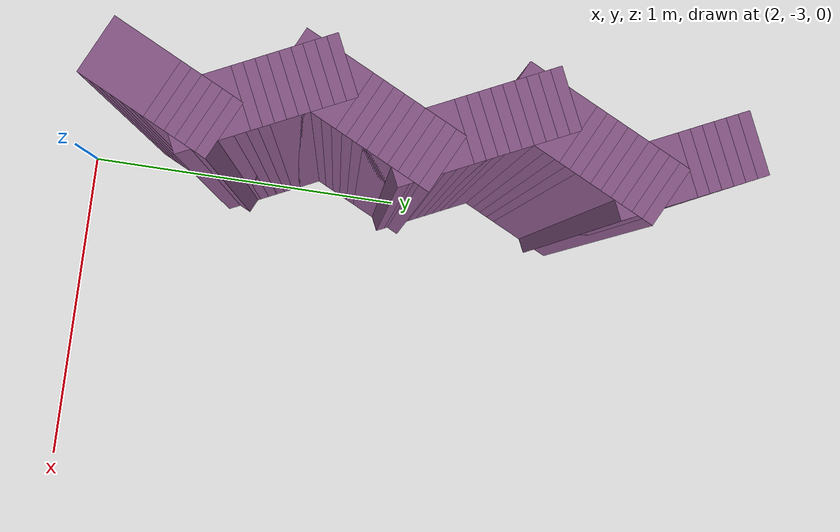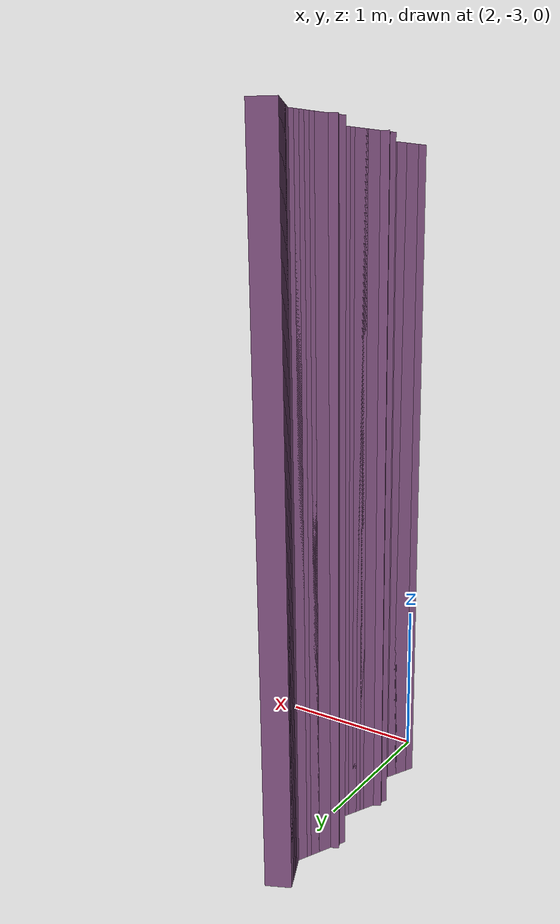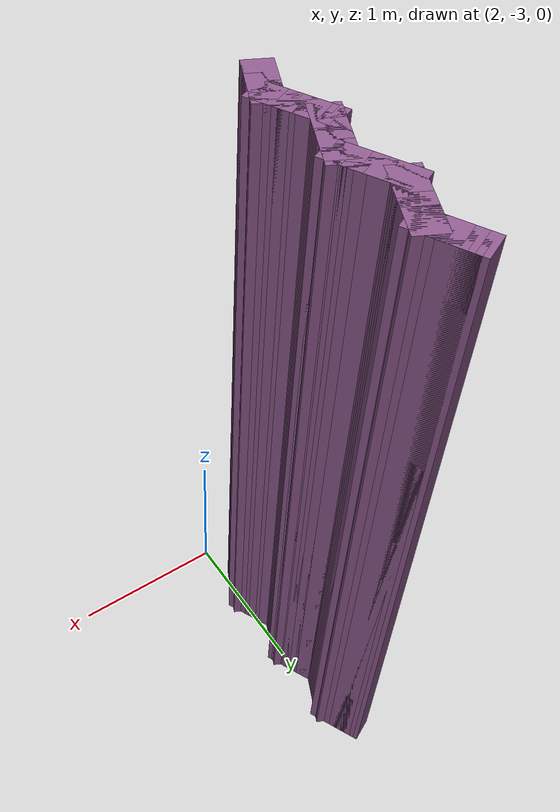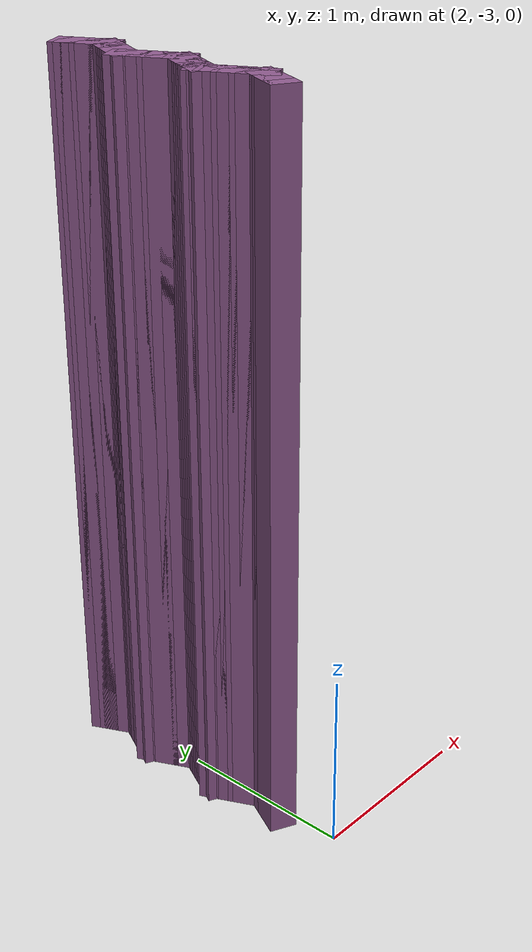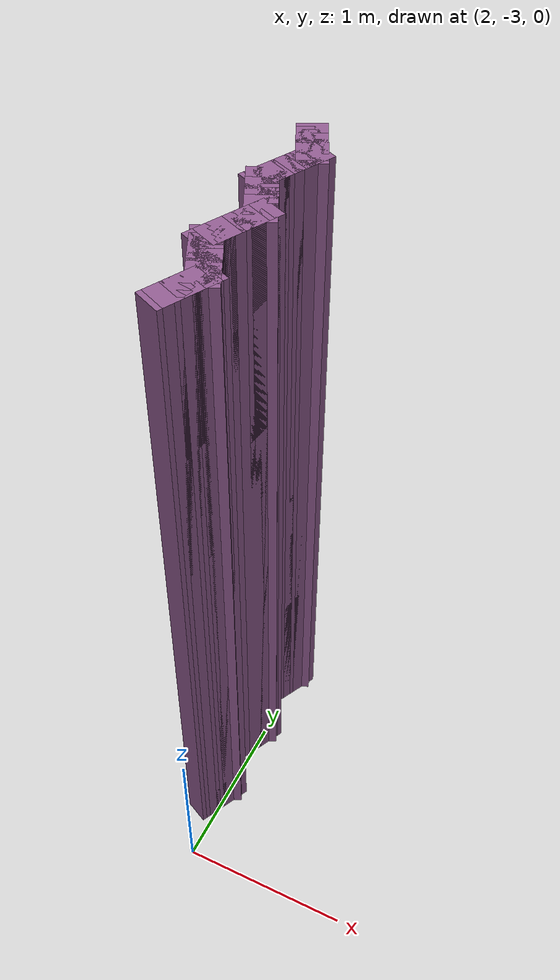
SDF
<sdf version="1.9">
 <world name="p5_serrated">
  <model name="wall_053">
   <static>true</static>
   <pose>1.9220 -2.6625 2.0000 0 0 1.12328</pose>
   <link name="link">
    <collision name="c"><geometry><box><size>0.1777 0.1500 4.0000</size></box></geometry></collision>
    <visual name="v">
     <geometry><box><size>0.1777 0.1500 4.0000</size></box></geometry>
     <material><ambient>0.55 0.35 0.55 1</ambient><diffuse>0.55 0.35 0.55 1</diffuse></material>
    </visual>
   </link>
  </model>
  <model name="wall_054">
   <static>true</static>
   <pose>1.9340 -2.6375 2.0000 0 0 1.12328</pose>
   <link name="link">
    <collision name="c"><geometry><box><size>0.1777 0.1500 4.0000</size></box></geometry></collision>
    <visual name="v">
     <geometry><box><size>0.1777 0.1500 4.0000</size></box></geometry>
     <material><ambient>0.55 0.35 0.55 1</ambient><diffuse>0.55 0.35 0.55 1</diffuse></material>
    </visual>
   </link>
  </model>
  <model name="wall_055">
   <static>true</static>
   <pose>1.9460 -2.6125 2.0000 0 0 1.12328</pose>
   <link name="link">
    <collision name="c"><geometry><box><size>0.1777 0.1500 4.0000</size></box></geometry></collision>
    <visual name="v">
     <geometry><box><size>0.1777 0.1500 4.0000</size></box></geometry>
     <material><ambient>0.55 0.35 0.55 1</ambient><diffuse>0.55 0.35 0.55 1</diffuse></material>
    </visual>
   </link>
  </model>
  <model name="wall_056">
   <static>true</static>
   <pose>1.9580 -2.5875 2.0000 0 0 1.12328</pose>
   <link name="link">
    <collision name="c"><geometry><box><size>0.1777 0.1500 4.0000</size></box></geometry></collision>
    <visual name="v">
     <geometry><box><size>0.1777 0.1500 4.0000</size></box></geometry>
     <material><ambient>0.55 0.35 0.55 1</ambient><diffuse>0.55 0.35 0.55 1</diffuse></material>
    </visual>
   </link>
  </model>
  <model name="wall_057">
   <static>true</static>
   <pose>1.9700 -2.5625 2.0000 0 0 1.12328</pose>
   <link name="link">
    <collision name="c"><geometry><box><size>0.1777 0.1500 4.0000</size></box></geometry></collision>
    <visual name="v">
     <geometry><box><size>0.1777 0.1500 4.0000</size></box></geometry>
     <material><ambient>0.55 0.35 0.55 1</ambient><diffuse>0.55 0.35 0.55 1</diffuse></material>
    </visual>
   </link>
  </model>
  <model name="wall_058">
   <static>true</static>
   <pose>1.9820 -2.5375 2.0000 0 0 1.12328</pose>
   <link name="link">
    <collision name="c"><geometry><box><size>0.1777 0.1500 4.0000</size></box></geometry></collision>
    <visual name="v">
     <geometry><box><size>0.1777 0.1500 4.0000</size></box></geometry>
     <material><ambient>0.55 0.35 0.55 1</ambient><diffuse>0.55 0.35 0.55 1</diffuse></material>
    </visual>
   </link>
  </model>
  <model name="wall_059">
   <static>true</static>
   <pose>1.9940 -2.5125 2.0000 0 0 1.12328</pose>
   <link name="link">
    <collision name="c"><geometry><box><size>0.1777 0.1500 4.0000</size></box></geometry></collision>
    <visual name="v">
     <geometry><box><size>0.1777 0.1500 4.0000</size></box></geometry>
     <material><ambient>0.55 0.35 0.55 1</ambient><diffuse>0.55 0.35 0.55 1</diffuse></material>
    </visual>
   </link>
  </model>
  <model name="wall_060">
   <static>true</static>
   <pose>1.9940 -2.4875 2.0000 0 0 2.01832</pose>
   <link name="link">
    <collision name="c"><geometry><box><size>0.1777 0.1500 4.0000</size></box></geometry></collision>
    <visual name="v">
     <geometry><box><size>0.1777 0.1500 4.0000</size></box></geometry>
     <material><ambient>0.55 0.35 0.55 1</ambient><diffuse>0.55 0.35 0.55 1</diffuse></material>
    </visual>
   </link>
  </model>
  <model name="wall_061">
   <static>true</static>
   <pose>1.9820 -2.4625 2.0000 0 0 2.01832</pose>
   <link name="link">
    <collision name="c"><geometry><box><size>0.1777 0.1500 4.0000</size></box></geometry></collision>
    <visual name="v">
     <geometry><box><size>0.1777 0.1500 4.0000</size></box></geometry>
     <material><ambient>0.55 0.35 0.55 1</ambient><diffuse>0.55 0.35 0.55 1</diffuse></material>
    </visual>
   </link>
  </model>
  <model name="wall_062">
   <static>true</static>
   <pose>1.9700 -2.4375 2.0000 0 0 2.01832</pose>
   <link name="link">
    <collision name="c"><geometry><box><size>0.1777 0.1500 4.0000</size></box></geometry></collision>
    <visual name="v">
     <geometry><box><size>0.1777 0.1500 4.0000</size></box></geometry>
     <material><ambient>0.55 0.35 0.55 1</ambient><diffuse>0.55 0.35 0.55 1</diffuse></material>
    </visual>
   </link>
  </model>
  <model name="wall_063">
   <static>true</static>
   <pose>1.9580 -2.4125 2.0000 0 0 2.01832</pose>
   <link name="link">
    <collision name="c"><geometry><box><size>0.1777 0.1500 4.0000</size></box></geometry></collision>
    <visual name="v">
     <geometry><box><size>0.1777 0.1500 4.0000</size></box></geometry>
     <material><ambient>0.55 0.35 0.55 1</ambient><diffuse>0.55 0.35 0.55 1</diffuse></material>
    </visual>
   </link>
  </model>
  <model name="wall_064">
   <static>true</static>
   <pose>1.9460 -2.3875 2.0000 0 0 2.01832</pose>
   <link name="link">
    <collision name="c"><geometry><box><size>0.1777 0.1500 4.0000</size></box></geometry></collision>
    <visual name="v">
     <geometry><box><size>0.1777 0.1500 4.0000</size></box></geometry>
     <material><ambient>0.55 0.35 0.55 1</ambient><diffuse>0.55 0.35 0.55 1</diffuse></material>
    </visual>
   </link>
  </model>
  <model name="wall_065">
   <static>true</static>
   <pose>1.9340 -2.3625 2.0000 0 0 2.01832</pose>
   <link name="link">
    <collision name="c"><geometry><box><size>0.1777 0.1500 4.0000</size></box></geometry></collision>
    <visual name="v">
     <geometry><box><size>0.1777 0.1500 4.0000</size></box></geometry>
     <material><ambient>0.55 0.35 0.55 1</ambient><diffuse>0.55 0.35 0.55 1</diffuse></material>
    </visual>
   </link>
  </model>
  <model name="wall_066">
   <static>true</static>
   <pose>1.9220 -2.3375 2.0000 0 0 2.01832</pose>
   <link name="link">
    <collision name="c"><geometry><box><size>0.1777 0.1500 4.0000</size></box></geometry></collision>
    <visual name="v">
     <geometry><box><size>0.1777 0.1500 4.0000</size></box></geometry>
     <material><ambient>0.55 0.35 0.55 1</ambient><diffuse>0.55 0.35 0.55 1</diffuse></material>
    </visual>
   </link>
  </model>
  <model name="wall_067">
   <static>true</static>
   <pose>1.9100 -2.3125 2.0000 0 0 2.01832</pose>
   <link name="link">
    <collision name="c"><geometry><box><size>0.1777 0.1500 4.0000</size></box></geometry></collision>
    <visual name="v">
     <geometry><box><size>0.1777 0.1500 4.0000</size></box></geometry>
     <material><ambient>0.55 0.35 0.55 1</ambient><diffuse>0.55 0.35 0.55 1</diffuse></material>
    </visual>
   </link>
  </model>
  <model name="wall_068">
   <static>true</static>
   <pose>1.8980 -2.2875 2.0000 0 0 2.01832</pose>
   <link name="link">
    <collision name="c"><geometry><box><size>0.1777 0.1500 4.0000</size></box></geometry></collision>
    <visual name="v">
     <geometry><box><size>0.1777 0.1500 4.0000</size></box></geometry>
     <material><ambient>0.55 0.35 0.55 1</ambient><diffuse>0.55 0.35 0.55 1</diffuse></material>
    </visual>
   </link>
  </model>
  <model name="wall_069">
   <static>true</static>
   <pose>1.8860 -2.2625 2.0000 0 0 2.01832</pose>
   <link name="link">
    <collision name="c"><geometry><box><size>0.1777 0.1500 4.0000</size></box></geometry></collision>
    <visual name="v">
     <geometry><box><size>0.1777 0.1500 4.0000</size></box></geometry>
     <material><ambient>0.55 0.35 0.55 1</ambient><diffuse>0.55 0.35 0.55 1</diffuse></material>
    </visual>
   </link>
  </model>
  <model name="wall_070">
   <static>true</static>
   <pose>1.8860 -2.2375 2.0000 0 0 1.12328</pose>
   <link name="link">
    <collision name="c"><geometry><box><size>0.1777 0.1500 4.0000</size></box></geometry></collision>
    <visual name="v">
     <geometry><box><size>0.1777 0.1500 4.0000</size></box></geometry>
     <material><ambient>0.55 0.35 0.55 1</ambient><diffuse>0.55 0.35 0.55 1</diffuse></material>
    </visual>
   </link>
  </model>
  <model name="wall_071">
   <static>true</static>
   <pose>1.8980 -2.2125 2.0000 0 0 1.12328</pose>
   <link name="link">
    <collision name="c"><geometry><box><size>0.1777 0.1500 4.0000</size></box></geometry></collision>
    <visual name="v">
     <geometry><box><size>0.1777 0.1500 4.0000</size></box></geometry>
     <material><ambient>0.55 0.35 0.55 1</ambient><diffuse>0.55 0.35 0.55 1</diffuse></material>
    </visual>
   </link>
  </model>
  <model name="wall_072">
   <static>true</static>
   <pose>1.9100 -2.1875 2.0000 0 0 1.12328</pose>
   <link name="link">
    <collision name="c"><geometry><box><size>0.1777 0.1500 4.0000</size></box></geometry></collision>
    <visual name="v">
     <geometry><box><size>0.1777 0.1500 4.0000</size></box></geometry>
     <material><ambient>0.55 0.35 0.55 1</ambient><diffuse>0.55 0.35 0.55 1</diffuse></material>
    </visual>
   </link>
  </model>
  <model name="wall_073">
   <static>true</static>
   <pose>1.9220 -2.1625 2.0000 0 0 1.12328</pose>
   <link name="link">
    <collision name="c"><geometry><box><size>0.1777 0.1500 4.0000</size></box></geometry></collision>
    <visual name="v">
     <geometry><box><size>0.1777 0.1500 4.0000</size></box></geometry>
     <material><ambient>0.55 0.35 0.55 1</ambient><diffuse>0.55 0.35 0.55 1</diffuse></material>
    </visual>
   </link>
  </model>
  <model name="wall_074">
   <static>true</static>
   <pose>1.9340 -2.1375 2.0000 0 0 1.12328</pose>
   <link name="link">
    <collision name="c"><geometry><box><size>0.1777 0.1500 4.0000</size></box></geometry></collision>
    <visual name="v">
     <geometry><box><size>0.1777 0.1500 4.0000</size></box></geometry>
     <material><ambient>0.55 0.35 0.55 1</ambient><diffuse>0.55 0.35 0.55 1</diffuse></material>
    </visual>
   </link>
  </model>
  <model name="wall_075">
   <static>true</static>
   <pose>1.9460 -2.1125 2.0000 0 0 1.12328</pose>
   <link name="link">
    <collision name="c"><geometry><box><size>0.1777 0.1500 4.0000</size></box></geometry></collision>
    <visual name="v">
     <geometry><box><size>0.1777 0.1500 4.0000</size></box></geometry>
     <material><ambient>0.55 0.35 0.55 1</ambient><diffuse>0.55 0.35 0.55 1</diffuse></material>
    </visual>
   </link>
  </model>
  <model name="wall_076">
   <static>true</static>
   <pose>1.9580 -2.0875 2.0000 0 0 1.12328</pose>
   <link name="link">
    <collision name="c"><geometry><box><size>0.1777 0.1500 4.0000</size></box></geometry></collision>
    <visual name="v">
     <geometry><box><size>0.1777 0.1500 4.0000</size></box></geometry>
     <material><ambient>0.55 0.35 0.55 1</ambient><diffuse>0.55 0.35 0.55 1</diffuse></material>
    </visual>
   </link>
  </model>
  <model name="wall_077">
   <static>true</static>
   <pose>1.9700 -2.0625 2.0000 0 0 1.12328</pose>
   <link name="link">
    <collision name="c"><geometry><box><size>0.1777 0.1500 4.0000</size></box></geometry></collision>
    <visual name="v">
     <geometry><box><size>0.1777 0.1500 4.0000</size></box></geometry>
     <material><ambient>0.55 0.35 0.55 1</ambient><diffuse>0.55 0.35 0.55 1</diffuse></material>
    </visual>
   </link>
  </model>
  <model name="wall_078">
   <static>true</static>
   <pose>1.9820 -2.0375 2.0000 0 0 1.12328</pose>
   <link name="link">
    <collision name="c"><geometry><box><size>0.1777 0.1500 4.0000</size></box></geometry></collision>
    <visual name="v">
     <geometry><box><size>0.1777 0.1500 4.0000</size></box></geometry>
     <material><ambient>0.55 0.35 0.55 1</ambient><diffuse>0.55 0.35 0.55 1</diffuse></material>
    </visual>
   </link>
  </model>
  <model name="wall_079">
   <static>true</static>
   <pose>1.9940 -2.0125 2.0000 0 0 1.12328</pose>
   <link name="link">
    <collision name="c"><geometry><box><size>0.1777 0.1500 4.0000</size></box></geometry></collision>
    <visual name="v">
     <geometry><box><size>0.1777 0.1500 4.0000</size></box></geometry>
     <material><ambient>0.55 0.35 0.55 1</ambient><diffuse>0.55 0.35 0.55 1</diffuse></material>
    </visual>
   </link>
  </model>
  <model name="wall_080">
   <static>true</static>
   <pose>1.9940 -1.9875 2.0000 0 0 2.01832</pose>
   <link name="link">
    <collision name="c"><geometry><box><size>0.1777 0.1500 4.0000</size></box></geometry></collision>
    <visual name="v">
     <geometry><box><size>0.1777 0.1500 4.0000</size></box></geometry>
     <material><ambient>0.55 0.35 0.55 1</ambient><diffuse>0.55 0.35 0.55 1</diffuse></material>
    </visual>
   </link>
  </model>
  <model name="wall_081">
   <static>true</static>
   <pose>1.9820 -1.9625 2.0000 0 0 2.01832</pose>
   <link name="link">
    <collision name="c"><geometry><box><size>0.1777 0.1500 4.0000</size></box></geometry></collision>
    <visual name="v">
     <geometry><box><size>0.1777 0.1500 4.0000</size></box></geometry>
     <material><ambient>0.55 0.35 0.55 1</ambient><diffuse>0.55 0.35 0.55 1</diffuse></material>
    </visual>
   </link>
  </model>
  <model name="wall_082">
   <static>true</static>
   <pose>1.9700 -1.9375 2.0000 0 0 2.01832</pose>
   <link name="link">
    <collision name="c"><geometry><box><size>0.1777 0.1500 4.0000</size></box></geometry></collision>
    <visual name="v">
     <geometry><box><size>0.1777 0.1500 4.0000</size></box></geometry>
     <material><ambient>0.55 0.35 0.55 1</ambient><diffuse>0.55 0.35 0.55 1</diffuse></material>
    </visual>
   </link>
  </model>
  <model name="wall_083">
   <static>true</static>
   <pose>1.9580 -1.9125 2.0000 0 0 2.01832</pose>
   <link name="link">
    <collision name="c"><geometry><box><size>0.1777 0.1500 4.0000</size></box></geometry></collision>
    <visual name="v">
     <geometry><box><size>0.1777 0.1500 4.0000</size></box></geometry>
     <material><ambient>0.55 0.35 0.55 1</ambient><diffuse>0.55 0.35 0.55 1</diffuse></material>
    </visual>
   </link>
  </model>
  <model name="wall_084">
   <static>true</static>
   <pose>1.9460 -1.8875 2.0000 0 0 2.01832</pose>
   <link name="link">
    <collision name="c"><geometry><box><size>0.1777 0.1500 4.0000</size></box></geometry></collision>
    <visual name="v">
     <geometry><box><size>0.1777 0.1500 4.0000</size></box></geometry>
     <material><ambient>0.55 0.35 0.55 1</ambient><diffuse>0.55 0.35 0.55 1</diffuse></material>
    </visual>
   </link>
  </model>
  <model name="wall_085">
   <static>true</static>
   <pose>1.9340 -1.8625 2.0000 0 0 2.01832</pose>
   <link name="link">
    <collision name="c"><geometry><box><size>0.1777 0.1500 4.0000</size></box></geometry></collision>
    <visual name="v">
     <geometry><box><size>0.1777 0.1500 4.0000</size></box></geometry>
     <material><ambient>0.55 0.35 0.55 1</ambient><diffuse>0.55 0.35 0.55 1</diffuse></material>
    </visual>
   </link>
  </model>
  <model name="wall_086">
   <static>true</static>
   <pose>1.9220 -1.8375 2.0000 0 0 2.01832</pose>
   <link name="link">
    <collision name="c"><geometry><box><size>0.1777 0.1500 4.0000</size></box></geometry></collision>
    <visual name="v">
     <geometry><box><size>0.1777 0.1500 4.0000</size></box></geometry>
     <material><ambient>0.55 0.35 0.55 1</ambient><diffuse>0.55 0.35 0.55 1</diffuse></material>
    </visual>
   </link>
  </model>
  <model name="wall_087">
   <static>true</static>
   <pose>1.9100 -1.8125 2.0000 0 0 2.01832</pose>
   <link name="link">
    <collision name="c"><geometry><box><size>0.1777 0.1500 4.0000</size></box></geometry></collision>
    <visual name="v">
     <geometry><box><size>0.1777 0.1500 4.0000</size></box></geometry>
     <material><ambient>0.55 0.35 0.55 1</ambient><diffuse>0.55 0.35 0.55 1</diffuse></material>
    </visual>
   </link>
  </model>
  <model name="wall_088">
   <static>true</static>
   <pose>1.8980 -1.7875 2.0000 0 0 2.01832</pose>
   <link name="link">
    <collision name="c"><geometry><box><size>0.1777 0.1500 4.0000</size></box></geometry></collision>
    <visual name="v">
     <geometry><box><size>0.1777 0.1500 4.0000</size></box></geometry>
     <material><ambient>0.55 0.35 0.55 1</ambient><diffuse>0.55 0.35 0.55 1</diffuse></material>
    </visual>
   </link>
  </model>
  <model name="wall_089">
   <static>true</static>
   <pose>1.8860 -1.7625 2.0000 0 0 2.01832</pose>
   <link name="link">
    <collision name="c"><geometry><box><size>0.1777 0.1500 4.0000</size></box></geometry></collision>
    <visual name="v">
     <geometry><box><size>0.1777 0.1500 4.0000</size></box></geometry>
     <material><ambient>0.55 0.35 0.55 1</ambient><diffuse>0.55 0.35 0.55 1</diffuse></material>
    </visual>
   </link>
  </model>
  <model name="wall_090">
   <static>true</static>
   <pose>1.8860 -1.7375 2.0000 0 0 1.12328</pose>
   <link name="link">
    <collision name="c"><geometry><box><size>0.1777 0.1500 4.0000</size></box></geometry></collision>
    <visual name="v">
     <geometry><box><size>0.1777 0.1500 4.0000</size></box></geometry>
     <material><ambient>0.55 0.35 0.55 1</ambient><diffuse>0.55 0.35 0.55 1</diffuse></material>
    </visual>
   </link>
  </model>
  <model name="wall_091">
   <static>true</static>
   <pose>1.8980 -1.7125 2.0000 0 0 1.12328</pose>
   <link name="link">
    <collision name="c"><geometry><box><size>0.1777 0.1500 4.0000</size></box></geometry></collision>
    <visual name="v">
     <geometry><box><size>0.1777 0.1500 4.0000</size></box></geometry>
     <material><ambient>0.55 0.35 0.55 1</ambient><diffuse>0.55 0.35 0.55 1</diffuse></material>
    </visual>
   </link>
  </model>
  <model name="wall_092">
   <static>true</static>
   <pose>1.9100 -1.6875 2.0000 0 0 1.12328</pose>
   <link name="link">
    <collision name="c"><geometry><box><size>0.1777 0.1500 4.0000</size></box></geometry></collision>
    <visual name="v">
     <geometry><box><size>0.1777 0.1500 4.0000</size></box></geometry>
     <material><ambient>0.55 0.35 0.55 1</ambient><diffuse>0.55 0.35 0.55 1</diffuse></material>
    </visual>
   </link>
  </model>
  <model name="wall_093">
   <static>true</static>
   <pose>1.9220 -1.6625 2.0000 0 0 1.12328</pose>
   <link name="link">
    <collision name="c"><geometry><box><size>0.1777 0.1500 4.0000</size></box></geometry></collision>
    <visual name="v">
     <geometry><box><size>0.1777 0.1500 4.0000</size></box></geometry>
     <material><ambient>0.55 0.35 0.55 1</ambient><diffuse>0.55 0.35 0.55 1</diffuse></material>
    </visual>
   </link>
  </model>
  <model name="wall_094">
   <static>true</static>
   <pose>1.9340 -1.6375 2.0000 0 0 1.12328</pose>
   <link name="link">
    <collision name="c"><geometry><box><size>0.1777 0.1500 4.0000</size></box></geometry></collision>
    <visual name="v">
     <geometry><box><size>0.1777 0.1500 4.0000</size></box></geometry>
     <material><ambient>0.55 0.35 0.55 1</ambient><diffuse>0.55 0.35 0.55 1</diffuse></material>
    </visual>
   </link>
  </model>
  <model name="wall_095">
   <static>true</static>
   <pose>1.9460 -1.6125 2.0000 0 0 1.12328</pose>
   <link name="link">
    <collision name="c"><geometry><box><size>0.1777 0.1500 4.0000</size></box></geometry></collision>
    <visual name="v">
     <geometry><box><size>0.1777 0.1500 4.0000</size></box></geometry>
     <material><ambient>0.55 0.35 0.55 1</ambient><diffuse>0.55 0.35 0.55 1</diffuse></material>
    </visual>
   </link>
  </model>
  <model name="wall_096">
   <static>true</static>
   <pose>1.9580 -1.5875 2.0000 0 0 1.12328</pose>
   <link name="link">
    <collision name="c"><geometry><box><size>0.1777 0.1500 4.0000</size></box></geometry></collision>
    <visual name="v">
     <geometry><box><size>0.1777 0.1500 4.0000</size></box></geometry>
     <material><ambient>0.55 0.35 0.55 1</ambient><diffuse>0.55 0.35 0.55 1</diffuse></material>
    </visual>
   </link>
  </model>
  <model name="wall_097">
   <static>true</static>
   <pose>1.9700 -1.5625 2.0000 0 0 1.12328</pose>
   <link name="link">
    <collision name="c"><geometry><box><size>0.1777 0.1500 4.0000</size></box></geometry></collision>
    <visual name="v">
     <geometry><box><size>0.1777 0.1500 4.0000</size></box></geometry>
     <material><ambient>0.55 0.35 0.55 1</ambient><diffuse>0.55 0.35 0.55 1</diffuse></material>
    </visual>
   </link>
  </model>
  <model name="wall_098">
   <static>true</static>
   <pose>1.9820 -1.5375 2.0000 0 0 1.12328</pose>
   <link name="link">
    <collision name="c"><geometry><box><size>0.1777 0.1500 4.0000</size></box></geometry></collision>
    <visual name="v">
     <geometry><box><size>0.1777 0.1500 4.0000</size></box></geometry>
     <material><ambient>0.55 0.35 0.55 1</ambient><diffuse>0.55 0.35 0.55 1</diffuse></material>
    </visual>
   </link>
  </model>
  <model name="wall_099">
   <static>true</static>
   <pose>1.9940 -1.5125 2.0000 0 0 1.12328</pose>
   <link name="link">
    <collision name="c"><geometry><box><size>0.1777 0.1500 4.0000</size></box></geometry></collision>
    <visual name="v">
     <geometry><box><size>0.1777 0.1500 4.0000</size></box></geometry>
     <material><ambient>0.55 0.35 0.55 1</ambient><diffuse>0.55 0.35 0.55 1</diffuse></material>
    </visual>
   </link>
  </model>
  <model name="wall_100">
   <static>true</static>
   <pose>1.9940 -1.4875 2.0000 0 0 2.01832</pose>
   <link name="link">
    <collision name="c"><geometry><box><size>0.1777 0.1500 4.0000</size></box></geometry></collision>
    <visual name="v">
     <geometry><box><size>0.1777 0.1500 4.0000</size></box></geometry>
     <material><ambient>0.55 0.35 0.55 1</ambient><diffuse>0.55 0.35 0.55 1</diffuse></material>
    </visual>
   </link>
  </model>
  <model name="wall_101">
   <static>true</static>
   <pose>1.9820 -1.4625 2.0000 0 0 2.01832</pose>
   <link name="link">
    <collision name="c"><geometry><box><size>0.1777 0.1500 4.0000</size></box></geometry></collision>
    <visual name="v">
     <geometry><box><size>0.1777 0.1500 4.0000</size></box></geometry>
     <material><ambient>0.55 0.35 0.55 1</ambient><diffuse>0.55 0.35 0.55 1</diffuse></material>
    </visual>
   </link>
  </model>
  <model name="wall_102">
   <static>true</static>
   <pose>1.9700 -1.4375 2.0000 0 0 2.01832</pose>
   <link name="link">
    <collision name="c"><geometry><box><size>0.1777 0.1500 4.0000</size></box></geometry></collision>
    <visual name="v">
     <geometry><box><size>0.1777 0.1500 4.0000</size></box></geometry>
     <material><ambient>0.55 0.35 0.55 1</ambient><diffuse>0.55 0.35 0.55 1</diffuse></material>
    </visual>
   </link>
  </model>
  <model name="wall_103">
   <static>true</static>
   <pose>1.9580 -1.4125 2.0000 0 0 2.01832</pose>
   <link name="link">
    <collision name="c"><geometry><box><size>0.1777 0.1500 4.0000</size></box></geometry></collision>
    <visual name="v">
     <geometry><box><size>0.1777 0.1500 4.0000</size></box></geometry>
     <material><ambient>0.55 0.35 0.55 1</ambient><diffuse>0.55 0.35 0.55 1</diffuse></material>
    </visual>
   </link>
  </model>
  <model name="wall_104">
   <static>true</static>
   <pose>1.9460 -1.3875 2.0000 0 0 2.01832</pose>
   <link name="link">
    <collision name="c"><geometry><box><size>0.1777 0.1500 4.0000</size></box></geometry></collision>
    <visual name="v">
     <geometry><box><size>0.1777 0.1500 4.0000</size></box></geometry>
     <material><ambient>0.55 0.35 0.55 1</ambient><diffuse>0.55 0.35 0.55 1</diffuse></material>
    </visual>
   </link>
  </model>
  <model name="wall_105">
   <static>true</static>
   <pose>1.9340 -1.3625 2.0000 0 0 2.01832</pose>
   <link name="link">
    <collision name="c"><geometry><box><size>0.1777 0.1500 4.0000</size></box></geometry></collision>
    <visual name="v">
     <geometry><box><size>0.1777 0.1500 4.0000</size></box></geometry>
     <material><ambient>0.55 0.35 0.55 1</ambient><diffuse>0.55 0.35 0.55 1</diffuse></material>
    </visual>
   </link>
  </model>
  <model name="wall_106">
   <static>true</static>
   <pose>1.9220 -1.3375 2.0000 0 0 2.01832</pose>
   <link name="link">
    <collision name="c"><geometry><box><size>0.1777 0.1500 4.0000</size></box></geometry></collision>
    <visual name="v">
     <geometry><box><size>0.1777 0.1500 4.0000</size></box></geometry>
     <material><ambient>0.55 0.35 0.55 1</ambient><diffuse>0.55 0.35 0.55 1</diffuse></material>
    </visual>
   </link>
  </model>
 </world>
</sdf>
